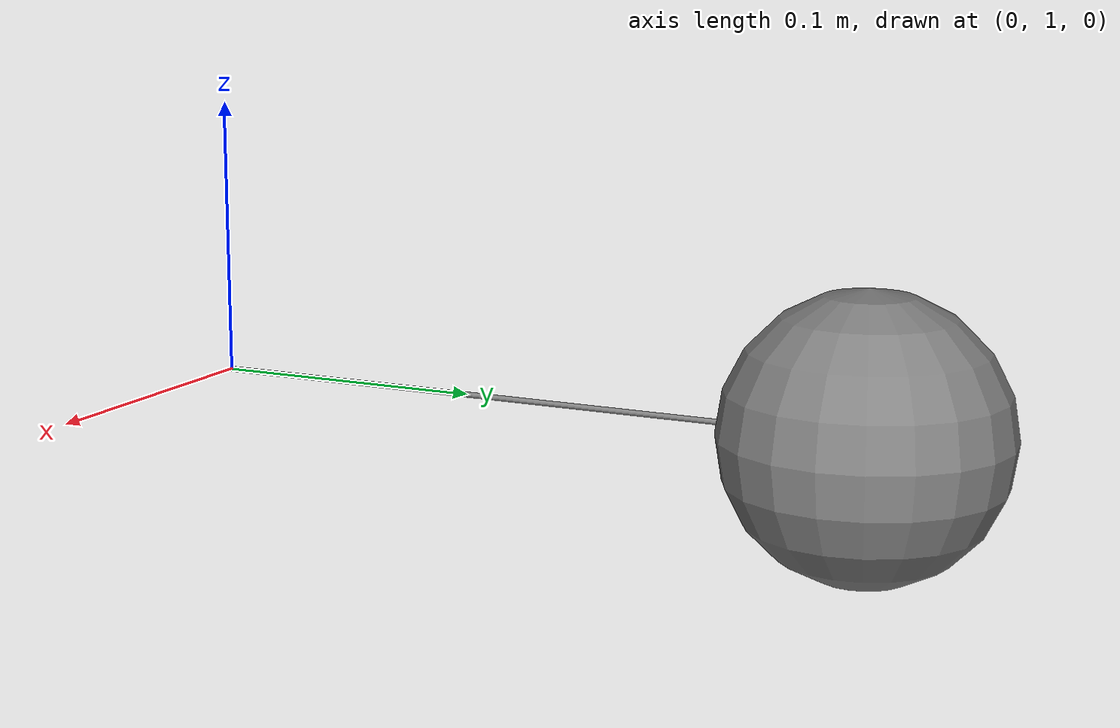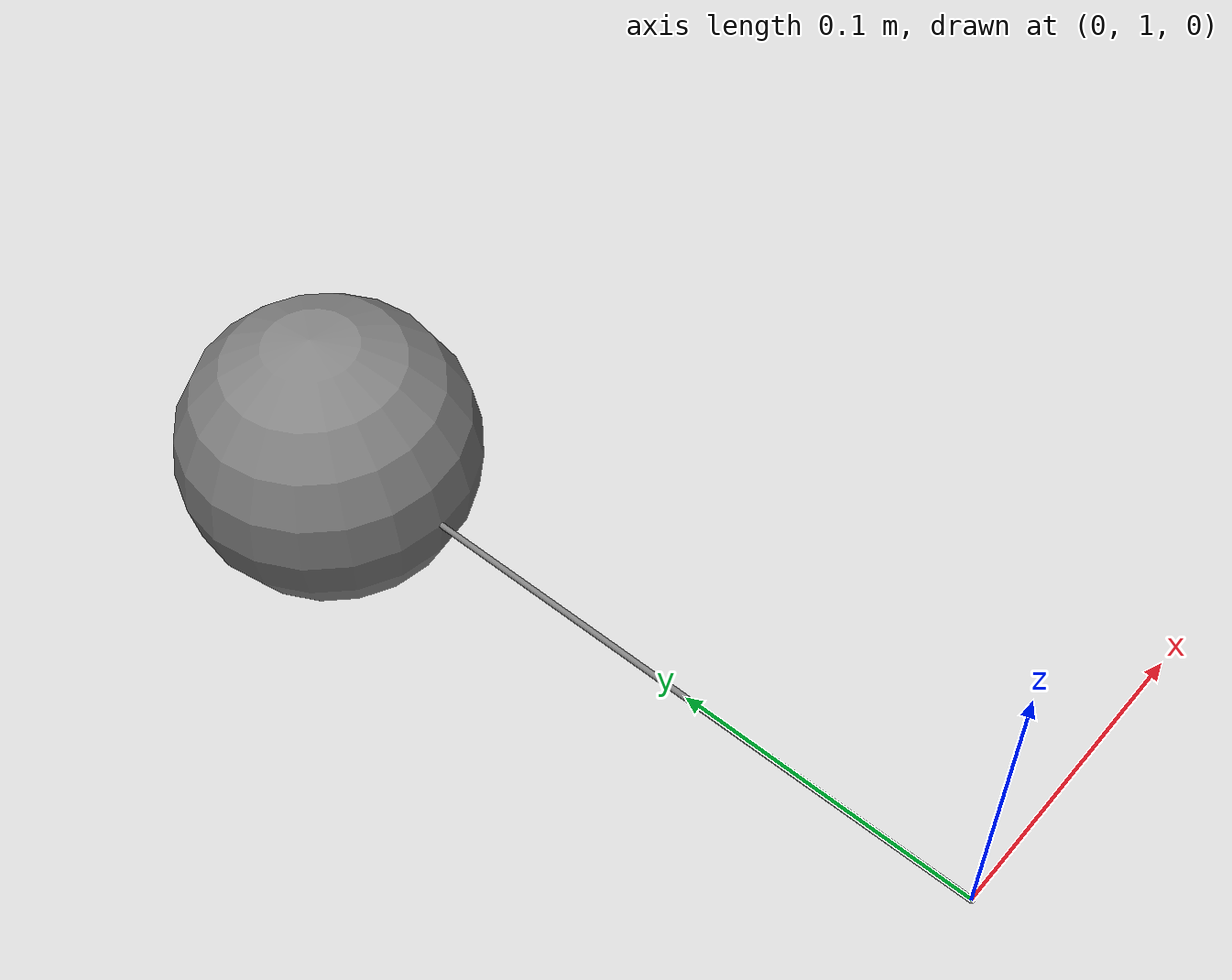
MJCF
<mujoco>
  <option gravity="0 -9.81 0" />

  <worldbody>
    <light diffuse=".5 .5 .5" pos="0 0 -3" dir="0 0 1"/>

    <body name="pendulum" pos="0 1 0">
      <joint name="hinge" type="hinge" axis="0 0 1" damping="0" frictionloss="0"/>
      <!-- Rod: Length 0.2485 m, Mass 0, Collision disabled -->
      <geom name="rod" type="capsule" fromto="0 0 0 0 0.2485 0" size="0.001" mass="0" contype="0" conaffinity="0"/>
      <!-- Bob: Shape sphere, Diameter 0.1 m (radius 0.05), Mass 1.0 kg -->
      <geom name="bob_geom" type="sphere" pos="0 0.2485 0" size="0.05" mass="1.0"/>
    </body>
  </worldbody>

  <keyframe>
    <key qpos="1.5708" />
  </keyframe>
</mujoco>
